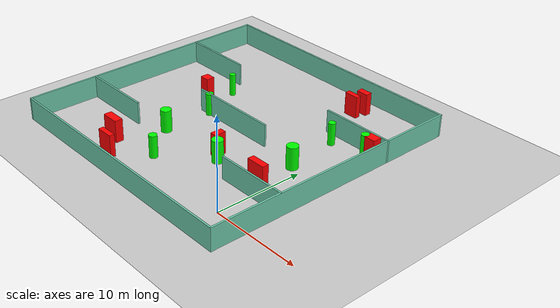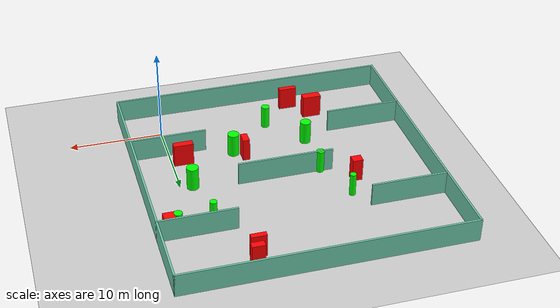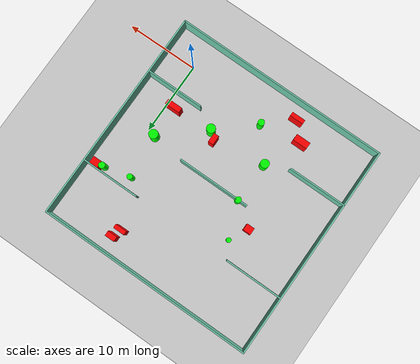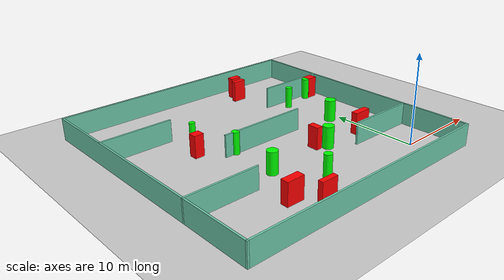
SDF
<sdf version="1.7">
 <world name="default">
  <light name="sun" type="directional">
   <pose>0 0 10 0 -0 0</pose>
   <diffuse>0.8 0.8 0.8 1</diffuse>
   <specular>0.2 0.2 0.2 1</specular>
   <attenuation>
    <range>1000</range>
    <constant>0.9</constant>
    <linear>0.01</linear>
    <quadratic>0.001</quadratic>
   </attenuation>
   <direction>-0.5 0.1 -0.9</direction>
   <spot><inner_angle>0</inner_angle><outer_angle>0</outer_angle><falloff>0</falloff></spot>
  </light>
  <model name="ground_plane">
   <static>1</static>
   <link name="link">
    <collision name="collision">
     <geometry><plane><normal>0 0 1</normal><size>100 100</size></plane></geometry>
     <surface>
      <contact><collide_bitmask>65535</collide_bitmask></contact>
      <friction><ode><mu>100</mu><mu2>50</mu2></ode></friction>
     </surface>
    </collision>
    <visual name="visual">
     <cast_shadows>0</cast_shadows>
     <geometry><plane><normal>0 0 1</normal><size>100 100</size></plane></geometry>
     <material>
      <script><uri>file://media/materials/scripts/gazebo.material</uri><name>Gazebo/Grey</name></script>
     </material>
    </visual>
   </link>
  </model>
  <gravity>0 0 -9.8</gravity>
  <magnetic_field>6e-06 2.3e-05 -4.2e-05</magnetic_field>
  <atmosphere type="adiabatic"/>
  <physics type="ode">
   <max_step_size>0.001</max_step_size>
   <real_time_factor>1</real_time_factor>
   <real_time_update_rate>1000</real_time_update_rate>
  </physics>
  <scene><ambient>0.4 0.4 0.4 1</ambient><background>0.7 0.7 0.7 1</background><shadows>1</shadows></scene>
  <spherical_coordinates>
   <surface_model>EARTH_WGS84</surface_model>
   <latitude_deg>0</latitude_deg>
   <longitude_deg>0</longitude_deg>
   <elevation>0</elevation>
   <heading_deg>0</heading_deg>
  </spherical_coordinates>
  <model name="my_base_walls">
   <link name="Wall_10">
    <collision name="Wall_10_Collision">
     <geometry><box><size>8.2 0.2 2.5</size></box></geometry>
     <pose>0 0 1.25 0 -0 0</pose>
    </collision>
    <visual name="Wall_10_Visual">
     <pose>0 0 1.25 0 -0 0</pose>
     <geometry><box><size>8.2 0.2 2.5</size></box></geometry>
     <material>
      <script><uri>file://media/materials/scripts/gazebo.material</uri><name>Gazebo/Grey</name></script>
      <ambient>0.435294 0.796078 0.67451 1</ambient>
     </material>
     <meta><layer>0</layer></meta>
    </visual>
    <pose>-11 -7 0 0 -0 0</pose>
   </link>
   <link name="Wall_12">
    <collision name="Wall_12_Collision">
     <geometry><box><size>8.2 0.2 2.5</size></box></geometry>
     <pose>0 0 1.25 0 -0 0</pose>
    </collision>
    <visual name="Wall_12_Visual">
     <pose>0 0 1.25 0 -0 0</pose>
     <geometry><box><size>8.2 0.2 2.5</size></box></geometry>
     <material>
      <script><uri>file://media/materials/scripts/gazebo.material</uri><name>Gazebo/Grey</name></script>
      <ambient>0.435294 0.796078 0.67451 1</ambient>
     </material>
     <meta><layer>0</layer></meta>
    </visual>
    <pose>-11 7 0 0 -0 0</pose>
   </link>
   <link name="Wall_14">
    <collision name="Wall_14_Collision">
     <geometry><box><size>8.2 0.2 2.5</size></box></geometry>
     <pose>0 0 1.25 0 -0 0</pose>
    </collision>
    <visual name="Wall_14_Visual">
     <pose>0 0 1.25 0 -0 0</pose>
     <geometry><box><size>8.2 0.2 2.5</size></box></geometry>
     <material>
      <script><uri>file://media/materials/scripts/gazebo.material</uri><name>Gazebo/Grey</name></script>
      <ambient>0.435294 0.796078 0.67451 1</ambient>
     </material>
     <meta><layer>0</layer></meta>
    </visual>
    <pose>11 7 0 0 -0 3.14159</pose>
   </link>
   <link name="Wall_16">
    <collision name="Wall_16_Collision">
     <geometry><box><size>10.2 0.2 2.5</size></box></geometry>
     <pose>0 0 1.25 0 -0 0</pose>
    </collision>
    <visual name="Wall_16_Visual">
     <pose>0 0 1.25 0 -0 0</pose>
     <geometry><box><size>10.2 0.2 2.5</size></box></geometry>
     <material>
      <script><uri>file://media/materials/scripts/gazebo.material</uri><name>Gazebo/Grey</name></script>
      <ambient>0.435294 0.796078 0.67451 1</ambient>
     </material>
     <meta><layer>0</layer></meta>
    </visual>
    <pose>0 0 0 0 -0 3.14159</pose>
   </link>
   <link name="Wall_2">
    <collision name="Wall_2_Collision">
     <geometry><box><size>30.2 0.2 2.5</size></box></geometry>
     <pose>0 0 1.25 0 -0 0</pose>
    </collision>
    <visual name="Wall_2_Visual">
     <pose>0 0 1.25 0 -0 0</pose>
     <geometry><box><size>30.2 0.2 2.5</size></box></geometry>
     <material>
      <script><uri>file://media/materials/scripts/gazebo.material</uri><name>Gazebo/Grey</name></script>
      <ambient>0.435294 0.796078 0.67451 1</ambient>
     </material>
     <meta><layer>0</layer></meta>
    </visual>
    <pose>0 -15 0 0 -0 3.14159</pose>
   </link>
   <link name="Wall_3">
    <collision name="Wall_3_Collision">
     <geometry><box><size>30.2 0.2 2.5</size></box></geometry>
     <pose>0 0 1.25 0 -0 0</pose>
    </collision>
    <visual name="Wall_3_Visual">
     <pose>0 0 1.25 0 -0 0</pose>
     <geometry><box><size>30.2 0.2 2.5</size></box></geometry>
     <material>
      <script><uri>file://media/materials/scripts/gazebo.material</uri><name>Gazebo/Grey</name></script>
      <ambient>0.435294 0.796078 0.67451 1</ambient>
     </material>
     <meta><layer>0</layer></meta>
    </visual>
    <pose>-15 0 0 0 -0 1.5708</pose>
   </link>
   <link name="Wall_4">
    <collision name="Wall_4_Collision">
     <geometry><box><size>30.2 0.2 2.5</size></box></geometry>
     <pose>0 0 1.25 0 -0 0</pose>
    </collision>
    <visual name="Wall_4_Visual">
     <pose>0 0 1.25 0 -0 0</pose>
     <geometry><box><size>30.2 0.2 2.5</size></box></geometry>
     <material>
      <script><uri>file://media/materials/scripts/gazebo.material</uri><name>Gazebo/Grey</name></script>
      <ambient>0.435294 0.796078 0.67451 1</ambient>
     </material>
     <meta><layer>0</layer></meta>
    </visual>
    <pose>0 15 0 0 -0 0</pose>
   </link>
   <link name="Wall_6">
    <collision name="Wall_6_Collision">
     <geometry><box><size>30.2 0.2 2.5</size></box></geometry>
     <pose>0 0 1.25 0 -0 0</pose>
    </collision>
    <visual name="Wall_6_Visual">
     <pose>0 0 1.25 0 -0 0</pose>
     <geometry><box><size>30.2 0.2 2.5</size></box></geometry>
     <material>
      <script><uri>file://media/materials/scripts/gazebo.material</uri><name>Gazebo/Grey</name></script>
      <ambient>0.435294 0.796078 0.67451 1</ambient>
     </material>
     <meta><layer>0</layer></meta>
    </visual>
    <pose>15 0 0 0 -0 1.5708</pose>
   </link>
   <link name="Wall_8">
    <collision name="Wall_8_Collision">
     <geometry><box><size>8.2 0.2 2.5</size></box></geometry>
     <pose>0 0 1.25 0 -0 0</pose>
    </collision>
    <visual name="Wall_8_Visual">
     <pose>0 0 1.25 0 -0 0</pose>
     <geometry><box><size>8.2 0.2 2.5</size></box></geometry>
     <material>
      <script><uri>file://media/materials/scripts/gazebo.material</uri><name>Gazebo/Grey</name></script>
      <ambient>0.435294 0.796078 0.67451 1</ambient>
     </material>
     <meta><layer>0</layer></meta>
    </visual>
    <pose>11 -7 0 0 -0 3.14159</pose>
   </link>
   <static>1</static>
   <pose>-11 11 0 0 -0 0</pose>
  </model>
  <model name="cylinder1">
   <static>1</static>
   <link name="link">
    <inertial>
     <mass>1</mass>
     <inertia><ixx>0.5</ixx><ixy>0</ixy><ixz>0</ixz><iyy>0.5</iyy><iyz>0</iyz><izz>1</izz></inertia>
    </inertial>
    <collision name="collision">
     <geometry><cylinder><radius>0.32982435233502777</radius><length>2.5</length></cylinder></geometry>
    </collision>
    <visual name="visual">
     <geometry><cylinder><radius>0.32982435233502777</radius><length>2.5</length></cylinder></geometry>
     <material>
      <ambient>0 1 0 1</ambient>
      <diffuse>0 1 0 1</diffuse>
      <specular>0.1 0.1 0.1 1</specular>
      <emissive>0 0 0 0</emissive>
     </material>
    </visual>
   </link>
   <pose>-16.674026479505144 15.79640033643362 1.25 0 0 0</pose>
  </model>
  <model name="cylinder2">
   <static>1</static>
   <link name="link">
    <inertial>
     <mass>1</mass>
     <inertia><ixx>0.5</ixx><ixy>0</ixy><ixz>0</ixz><iyy>0.5</iyy><iyz>0</iyz><izz>1</izz></inertia>
    </inertial>
    <collision name="collision">
     <geometry><cylinder><radius>0.3754914200317024</radius><length>2.5</length></cylinder></geometry>
    </collision>
    <visual name="visual">
     <geometry><cylinder><radius>0.3754914200317024</radius><length>2.5</length></cylinder></geometry>
     <material>
      <ambient>0 1 0 1</ambient>
      <diffuse>0 1 0 1</diffuse>
      <specular>0.1 0.1 0.1 1</specular>
      <emissive>0 0 0 0</emissive>
     </material>
    </visual>
   </link>
   <pose>-1.9602272788324555 16.43609505796973 1.25 0 0 0</pose>
  </model>
  <model name="cylinder3">
   <static>1</static>
   <link name="link">
    <inertial>
     <mass>1</mass>
     <inertia><ixx>0.5</ixx><ixy>0</ixy><ixz>0</ixz><iyy>0.5</iyy><iyz>0</iyz><izz>1</izz></inertia>
    </inertial>
    <collision name="collision">
     <geometry><cylinder><radius>0.4343436678580863</radius><length>2.5</length></cylinder></geometry>
    </collision>
    <visual name="visual">
     <geometry><cylinder><radius>0.4343436678580863</radius><length>2.5</length></cylinder></geometry>
     <material>
      <ambient>0 1 0 1</ambient>
      <diffuse>0 1 0 1</diffuse>
      <specular>0.1 0.1 0.1 1</specular>
      <emissive>0 0 0 0</emissive>
     </material>
    </visual>
   </link>
   <pose>1.7528454560009408 17.286873793662153 1.25 0 0 0</pose>
  </model>
  <model name="cylinder4">
   <static>1</static>
   <link name="link">
    <inertial>
     <mass>1</mass>
     <inertia><ixx>0.5</ixx><ixy>0</ixy><ixz>0</ixz><iyy>0.5</iyy><iyz>0</iyz><izz>1</izz></inertia>
    </inertial>
    <collision name="collision">
     <geometry><cylinder><radius>0.5894311429354615</radius><length>2.5</length></cylinder></geometry>
    </collision>
    <visual name="visual">
     <geometry><cylinder><radius>0.5894311429354615</radius><length>2.5</length></cylinder></geometry>
     <material>
      <ambient>0 1 0 1</ambient>
      <diffuse>0 1 0 1</diffuse>
      <specular>0.1 0.1 0.1 1</specular>
      <emissive>0 0 0 0</emissive>
     </material>
    </visual>
   </link>
   <pose>-14.916465680308699 5.355253380765291 1.25 0 0 0</pose>
  </model>
  <model name="cylinder5">
   <static>1</static>
   <link name="link">
    <inertial>
     <mass>1</mass>
     <inertia><ixx>0.5</ixx><ixy>0</ixy><ixz>0</ixz><iyy>0.5</iyy><iyz>0</iyz><izz>1</izz></inertia>
    </inertial>
    <collision name="collision">
     <geometry><cylinder><radius>0.44463987968276064</radius><length>2.5</length></cylinder></geometry>
    </collision>
    <visual name="visual">
     <geometry><cylinder><radius>0.44463987968276064</radius><length>2.5</length></cylinder></geometry>
     <material>
      <ambient>0 1 0 1</ambient>
      <diffuse>0 1 0 1</diffuse>
      <specular>0.1 0.1 0.1 1</specular>
      <emissive>0 0 0 0</emissive>
     </material>
    </visual>
   </link>
   <pose>-11.561669856558492 1.2908497758339852 1.25 0 0 0</pose>
  </model>
  <model name="cylinder6">
   <static>1</static>
   <link name="link">
    <inertial>
     <mass>1</mass>
     <inertia><ixx>0.5</ixx><ixy>0</ixy><ixz>0</ixz><iyy>0.5</iyy><iyz>0</iyz><izz>1</izz></inertia>
    </inertial>
    <collision name="collision">
     <geometry><cylinder><radius>0.6151378712976159</radius><length>2.5</length></cylinder></geometry>
    </collision>
    <visual name="visual">
     <geometry><cylinder><radius>0.6151378712976159</radius><length>2.5</length></cylinder></geometry>
     <material>
      <ambient>0 1 0 1</ambient>
      <diffuse>0 1 0 1</diffuse>
      <specular>0.1 0.1 0.1 1</specular>
      <emissive>0 0 0 0</emissive>
     </material>
    </visual>
   </link>
   <pose>-6.799244591492794 5.573794607530418 1.25 0 0 0</pose>
  </model>
  <model name="cylinder7">
   <static>1</static>
   <link name="link">
    <inertial>
     <mass>1</mass>
     <inertia><ixx>0.5</ixx><ixy>0</ixy><ixz>0</ixz><iyy>0.5</iyy><iyz>0</iyz><izz>1</izz></inertia>
    </inertial>
    <collision name="collision">
     <geometry><cylinder><radius>0.6295813881494243</radius><length>2.5</length></cylinder></geometry>
    </collision>
    <visual name="visual">
     <geometry><cylinder><radius>0.6295813881494243</radius><length>2.5</length></cylinder></geometry>
     <material>
      <ambient>0 1 0 1</ambient>
      <diffuse>0 1 0 1</diffuse>
      <specular>0.1 0.1 0.1 1</specular>
      <emissive>0 0 0 0</emissive>
     </material>
    </visual>
   </link>
   <pose>-1.2451108473490144 10.343052888393311 1.25 0 0 0</pose>
  </model>
  <model name="cylinder8">
   <static>1</static>
   <link name="link">
    <inertial>
     <mass>1</mass>
     <inertia><ixx>0.5</ixx><ixy>0</ixy><ixz>0</ixz><iyy>0.5</iyy><iyz>0</iyz><izz>1</izz></inertia>
    </inertial>
    <collision name="collision">
     <geometry><cylinder><radius>0.413109154960049</radius><length>2.5</length></cylinder></geometry>
    </collision>
    <visual name="visual">
     <geometry><cylinder><radius>0.413109154960049</radius><length>2.5</length></cylinder></geometry>
     <material>
      <ambient>0 1 0 1</ambient>
      <diffuse>0 1 0 1</diffuse>
      <specular>0.1 0.1 0.1 1</specular>
      <emissive>0 0 0 0</emissive>
     </material>
    </visual>
   </link>
   <pose>-14.763658424635162 11.006830990226174 1.25 0 0 0</pose>
  </model>
  <model name="box1">
   <static>1</static>
   <link name="link">
    <inertial>
     <mass>1</mass>
     <inertia><ixx>0.083</ixx><ixy>0</ixy><ixz>0</ixz><iyy>0.083</iyy><iyz>0</iyz><izz>0.083</izz></inertia>
    </inertial>
    <collision name="collision">
     <geometry><box><size>1.6072626641855277 0.5641020937293615 2.5</size></box></geometry>
    </collision>
    <visual name="visual">
     <geometry><box><size>1.6072626641855277 0.5641020937293615 2.5</size></box></geometry>
     <material>
      <ambient>1 0 0 1</ambient>
      <diffuse>1 0 0 1</diffuse>
      <specular>0.1 0.1 0.1 1</specular>
      <emissive>0 0 0 0</emissive>
     </material>
    </visual>
    <sensor name="my_contact" type="contact">
     <contact><collision>box_collision</collision><topic>__default_topic__</topic></contact>
    </sensor>
   </link>
   <pose>-4.853672172814809 22.510375136781594 1.25 0 0 0</pose>
  </model>
  <model name="box2">
   <static>1</static>
   <link name="link">
    <inertial>
     <mass>1</mass>
     <inertia><ixx>0.083</ixx><ixy>0</ixy><ixz>0</ixz><iyy>0.083</iyy><iyz>0</iyz><izz>0.083</izz></inertia>
    </inertial>
    <collision name="collision">
     <geometry><box><size>2.0071870381639876 0.8860780774686468 2.5</size></box></geometry>
    </collision>
    <visual name="visual">
     <geometry><box><size>2.0071870381639876 0.8860780774686468 2.5</size></box></geometry>
     <material>
      <ambient>1 0 0 1</ambient>
      <diffuse>1 0 0 1</diffuse>
      <specular>0.1 0.1 0.1 1</specular>
      <emissive>0 0 0 0</emissive>
     </material>
    </visual>
    <sensor name="my_contact" type="contact">
     <contact><collision>box_collision</collision><topic>__default_topic__</topic></contact>
    </sensor>
   </link>
   <pose>-17.13150226684781 0.3632292014129761 1.25 0 0 0</pose>
  </model>
  <model name="box3">
   <static>1</static>
   <link name="link">
    <inertial>
     <mass>1</mass>
     <inertia><ixx>0.083</ixx><ixy>0</ixy><ixz>0</ixz><iyy>0.083</iyy><iyz>0</iyz><izz>0.083</izz></inertia>
    </inertial>
    <collision name="collision">
     <geometry><box><size>1.9162947548204277 0.5673312460598927 2.5</size></box></geometry>
    </collision>
    <visual name="visual">
     <geometry><box><size>1.9162947548204277 0.5673312460598927 2.5</size></box></geometry>
     <material>
      <ambient>1 0 0 1</ambient>
      <diffuse>1 0 0 1</diffuse>
      <specular>0.1 0.1 0.1 1</specular>
      <emissive>0 0 0 0</emissive>
     </material>
    </visual>
    <sensor name="my_contact" type="contact">
     <contact><collision>box_collision</collision><topic>__default_topic__</topic></contact>
    </sensor>
   </link>
   <pose>-15.017258912280983 -1.82086350474864 1.25 0 0 0</pose>
  </model>
  <model name="box4">
   <static>1</static>
   <link name="link">
    <inertial>
     <mass>1</mass>
     <inertia><ixx>0.083</ixx><ixy>0</ixy><ixz>0</ixz><iyy>0.083</iyy><iyz>0</iyz><izz>0.083</izz></inertia>
    </inertial>
    <collision name="collision">
     <geometry><box><size>1.3567299979994845 0.7133137484676968 2.5</size></box></geometry>
    </collision>
    <visual name="visual">
     <geometry><box><size>1.3567299979994845 0.7133137484676968 2.5</size></box></geometry>
     <material>
      <ambient>1 0 0 1</ambient>
      <diffuse>1 0 0 1</diffuse>
      <specular>0.1 0.1 0.1 1</specular>
      <emissive>0 0 0 0</emissive>
     </material>
    </visual>
    <sensor name="my_contact" type="contact">
     <contact><collision>box_collision</collision><topic>__default_topic__</topic></contact>
    </sensor>
   </link>
   <pose>-4.436877093374338 23.812993049335628 1.25 0 0 0</pose>
  </model>
  <model name="box5">
   <static>1</static>
   <link name="link">
    <inertial>
     <mass>1</mass>
     <inertia><ixx>0.083</ixx><ixy>0</ixy><ixz>0</ixz><iyy>0.083</iyy><iyz>0</iyz><izz>0.083</izz></inertia>
    </inertial>
    <collision name="collision">
     <geometry><box><size>0.7302870268224897 1.3061584107552726 2.5</size></box></geometry>
    </collision>
    <visual name="visual">
     <geometry><box><size>0.7302870268224897 1.3061584107552726 2.5</size></box></geometry>
     <material>
      <ambient>1 0 0 1</ambient>
      <diffuse>1 0 0 1</diffuse>
      <specular>0.1 0.1 0.1 1</specular>
      <emissive>0 0 0 0</emissive>
     </material>
    </visual>
    <sensor name="my_contact" type="contact">
     <contact><collision>box_collision</collision><topic>__default_topic__</topic></contact>
    </sensor>
   </link>
   <pose>-7.831814717048417 6.486635214631608 1.25 0 0 0</pose>
  </model>
  <model name="box6">
   <static>1</static>
   <link name="link">
    <inertial>
     <mass>1</mass>
     <inertia><ixx>0.083</ixx><ixy>0</ixy><ixz>0</ixz><iyy>0.083</iyy><iyz>0</iyz><izz>0.083</izz></inertia>
    </inertial>
    <collision name="collision">
     <geometry><box><size>1.096262149324434 0.9390966205497094 2.5</size></box></geometry>
    </collision>
    <visual name="visual">
     <geometry><box><size>1.096262149324434 0.9390966205497094 2.5</size></box></geometry>
     <material>
      <ambient>1 0 0 1</ambient>
      <diffuse>1 0 0 1</diffuse>
      <specular>0.1 0.1 0.1 1</specular>
      <emissive>0 0 0 0</emissive>
     </material>
    </visual>
    <sensor name="my_contact" type="contact">
     <contact><collision>box_collision</collision><topic>__default_topic__</topic></contact>
    </sensor>
   </link>
   <pose>-17.952511508409167 13.266022390722696 1.25 0 0 0</pose>
  </model>
  <model name="box7">
   <static>1</static>
   <link name="link">
    <inertial>
     <mass>1</mass>
     <inertia><ixx>0.083</ixx><ixy>0</ixy><ixz>0</ixz><iyy>0.083</iyy><iyz>0</iyz><izz>0.083</izz></inertia>
    </inertial>
    <collision name="collision">
     <geometry><box><size>2.095518420723798 0.7275802008687814 2.5</size></box></geometry>
    </collision>
    <visual name="visual">
     <geometry><box><size>2.095518420723798 0.7275802008687814 2.5</size></box></geometry>
     <material>
      <ambient>1 0 0 1</ambient>
      <diffuse>1 0 0 1</diffuse>
      <specular>0.1 0.1 0.1 1</specular>
      <emissive>0 0 0 0</emissive>
     </material>
    </visual>
    <sensor name="my_contact" type="contact">
     <contact><collision>box_collision</collision><topic>__default_topic__</topic></contact>
    </sensor>
   </link>
   <pose>-1.240917939132892 5.9144162626067995 1.25 0 0 0</pose>
  </model>
  <model name="box8">
   <static>1</static>
   <link name="link">
    <inertial>
     <mass>1</mass>
     <inertia><ixx>0.083</ixx><ixy>0</ixy><ixz>0</ixz><iyy>0.083</iyy><iyz>0</iyz><izz>0.083</izz></inertia>
    </inertial>
    <collision name="collision">
     <geometry><box><size>1.2421721559763006 0.9795282440083544 2.5</size></box></geometry>
    </collision>
    <visual name="visual">
     <geometry><box><size>1.2421721559763006 0.9795282440083544 2.5</size></box></geometry>
     <material>
      <ambient>1 0 0 1</ambient>
      <diffuse>1 0 0 1</diffuse>
      <specular>0.1 0.1 0.1 1</specular>
      <emissive>0 0 0 0</emissive>
     </material>
    </visual>
    <sensor name="my_contact" type="contact">
     <contact><collision>box_collision</collision><topic>__default_topic__</topic></contact>
    </sensor>
   </link>
   <pose>2.6182408996034354 17.408073219323693 1.25 0 0 0</pose>
  </model>
 </world>
</sdf>
